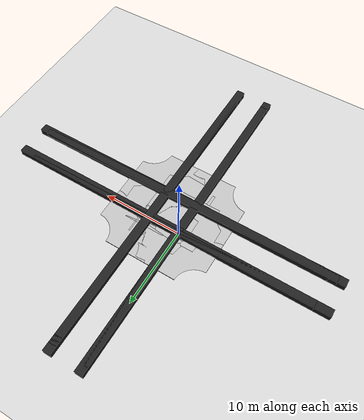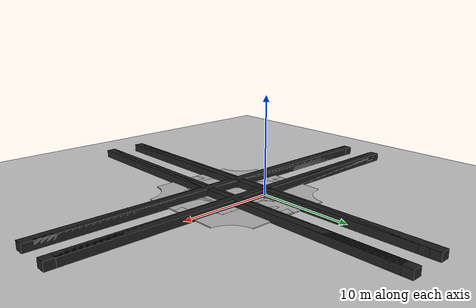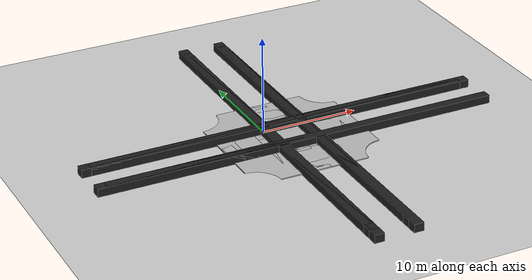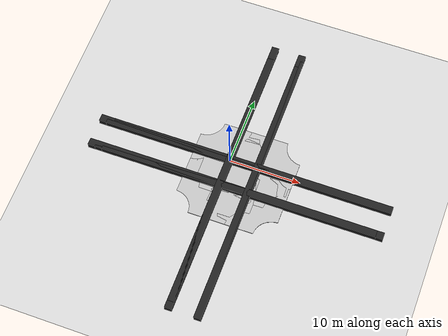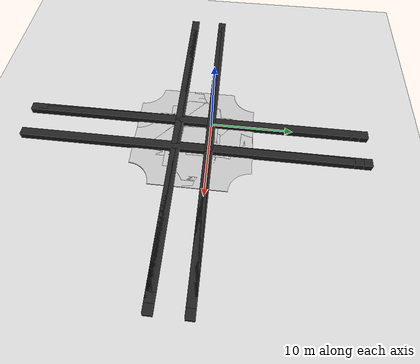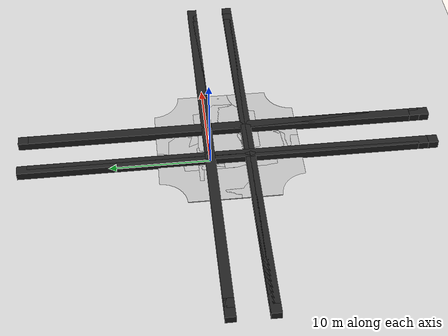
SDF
<sdf version="1.4">
 <world name="road_test">
  <scene>
   <ambient>120 120 120 255</ambient>
   <sky><clouds><speed>5</speed></clouds><time>12:12</time></sky>
  </scene>
  <model name="road_intersection_0_0">
   <include><uri>model://road_intersection</uri></include>
   <pose>0 0 0.02 0 0 0.0</pose>
  </model>
  <model name="curb_0_1"><include><uri>model://curb</uri></include><pose>1 0 0.02 0 0 0.0</pose></model>
  <model name="curb_0_2"><include><uri>model://curb</uri></include><pose>2 0 0.02 0 0 0.0</pose></model>
  <model name="curb_0_3"><include><uri>model://curb</uri></include><pose>3 0 0.02 0 0 0.0</pose></model>
  <model name="road_intersection_0_4">
   <include><uri>model://road_intersection</uri></include>
   <pose>4 0 0.02 0 0 0.0</pose>
  </model>
  <model name="curb_1_0"><include><uri>model://curb</uri></include><pose>0 -1 0.02 0 0 1.57</pose></model>
  <model name="ground_plane_1_1">
   <include><uri>model://ground_plane</uri></include>
   <pose>1 -1 0.0 0 0 0.0</pose>
  </model>
  <model name="ground_plane_1_2">
   <include><uri>model://ground_plane</uri></include>
   <pose>2 -1 0.0 0 0 0.0</pose>
  </model>
  <model name="ground_plane_1_3">
   <include><uri>model://ground_plane</uri></include>
   <pose>3 -1 0.0 0 0 0.0</pose>
  </model>
  <model name="curb_1_4"><include><uri>model://curb</uri></include><pose>4 -1 0.02 0 0 1.57</pose></model>
  <model name="curb_2_0"><include><uri>model://curb</uri></include><pose>0 -2 0.02 0 0 1.57</pose></model>
  <model name="ground_plane_2_1">
   <include><uri>model://ground_plane</uri></include>
   <pose>1 -2 0.0 0 0 0.0</pose>
  </model>
  <model name="ground_plane_2_2">
   <include><uri>model://ground_plane</uri></include>
   <pose>2 -2 0.0 0 0 0.0</pose>
  </model>
  <model name="ground_plane_2_3">
   <include><uri>model://ground_plane</uri></include>
   <pose>3 -2 0.0 0 0 0.0</pose>
  </model>
  <model name="curb_2_4"><include><uri>model://curb</uri></include><pose>4 -2 0.02 0 0 1.57</pose></model>
  <model name="curb_3_0"><include><uri>model://curb</uri></include><pose>0 -3 0.02 0 0 1.57</pose></model>
  <model name="ground_plane_3_1">
   <include><uri>model://ground_plane</uri></include>
   <pose>1 -3 0.0 0 0 0.0</pose>
  </model>
  <model name="ground_plane_3_2">
   <include><uri>model://ground_plane</uri></include>
   <pose>2 -3 0.0 0 0 0.0</pose>
  </model>
  <model name="ground_plane_3_3">
   <include><uri>model://ground_plane</uri></include>
   <pose>3 -3 0.0 0 0 0.0</pose>
  </model>
  <model name="curb_3_4"><include><uri>model://curb</uri></include><pose>4 -3 0.02 0 0 1.57</pose></model>
  <model name="road_intersection_4_0">
   <include><uri>model://road_intersection</uri></include>
   <pose>0 -4 0.02 0 0 0.0</pose>
  </model>
  <model name="curb_4_1"><include><uri>model://curb</uri></include><pose>1 -4 0.02 0 0 0.0</pose></model>
  <model name="curb_4_2"><include><uri>model://curb</uri></include><pose>2 -4 0.02 0 0 0.0</pose></model>
  <model name="curb_4_3"><include><uri>model://curb</uri></include><pose>3 -4 0.02 0 0 0.0</pose></model>
  <model name="road_intersection_4_4">
   <include><uri>model://road_intersection</uri></include>
   <pose>4 -4 0.02 0 0 0.0</pose>
  </model>
  <include name="sun"><uri>model://sun</uri></include>
 </world>
</sdf>

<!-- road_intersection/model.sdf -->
<sdf version="1.6">
  <model name="road_intersection">
    <pose>0 0 0 0 0 0</pose>
    <static>true</static>
    <link name="link">
      <visual name="visual">
        <geometry>
          <mesh>
            <uri>model://road_intersection/meshes/road_intersection.dae</uri>
          </mesh>
        </geometry>
      </visual>
      <collision name="collision">
        <geometry>
          <mesh>
            <uri>model://road_intersection/meshes/road_intersection.dae</uri>
          </mesh>
        </geometry>
      </collision>
    </link>
  </model>
</sdf>

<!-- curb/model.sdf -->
<sdf version='1.7'>
  <model name='curb'>
    <static>true</static>
    <link name='link_5'>
      <inertial>
        <mass>1</mass>
        <inertia>
          <ixx>0.166667</ixx>
          <ixy>0</ixy>
          <ixz>0</ixz>
          <iyy>0.166667</iyy>
          <iyz>0</iyz>
          <izz>0.166667</izz>
        </inertia>
      </inertial>
      <pose>-2.6e-05 -4.2e-05 0 0 -0 0</pose>
      <visual name='visual'>
        <pose>0 0 0 0 -0 0</pose>
        <geometry>
          <box>
            <size>40 1 1.5</size>
          </box>
        </geometry>
        <material>
          <lighting>1</lighting>
          <script>
            <uri>file://media/materials/scripts/gazebo.material</uri>
            <name>Gazebo/Black</name>
          </script>
          <shader type='pixel'/>
        </material>
        <transparency>0</transparency>
        <cast_shadows>1</cast_shadows>
      </visual>
      <collision name='collision'>
        <laser_retro>0</laser_retro>
        <max_contacts>10</max_contacts>
        <pose>0 0 0 0 -0 0</pose>
        <geometry>
          <box>
            <size>40 1 1.5</size>
          </box>
        </geometry>
        <surface>
          <friction>
            <ode>
              <mu>1</mu>
              <mu2>1</mu2>
              <fdir1>0 0 0</fdir1>
              <slip1>0</slip1>
              <slip2>0</slip2>
            </ode>
            <torsional>
              <coefficient>1</coefficient>
              <patch_radius>0</patch_radius>
              <surface_radius>0</surface_radius>
              <use_patch_radius>1</use_patch_radius>
              <ode>
                <slip>0</slip>
              </ode>
            </torsional>
          </friction>
          <bounce>
            <restitution_coefficient>0</restitution_coefficient>
            <threshold>1e+06</threshold>
          </bounce>
          <contact>
            <collide_without_contact>0</collide_without_contact>
            <collide_without_contact_bitmask>1</collide_without_contact_bitmask>
            <collide_bitmask>1</collide_bitmask>
            <ode>
              <soft_cfm>0</soft_cfm>
              <soft_erp>0.2</soft_erp>
              <kp>1e+13</kp>
              <kd>1</kd>
              <max_vel>0.01</max_vel>
              <min_depth>0</min_depth>
            </ode>
            <bullet>
              <split_impulse>1</split_impulse>
              <split_impulse_penetration_threshold>-0.01</split_impulse_penetration_threshold>
              <soft_cfm>0</soft_cfm>
              <soft_erp>0.2</soft_erp>
              <kp>1e+13</kp>
              <kd>1</kd>
            </bullet>
          </contact>
        </surface>
      </collision>
    </link>
    <static>0</static>
    <allow_auto_disable>1</allow_auto_disable>
  </model>
</sdf>
